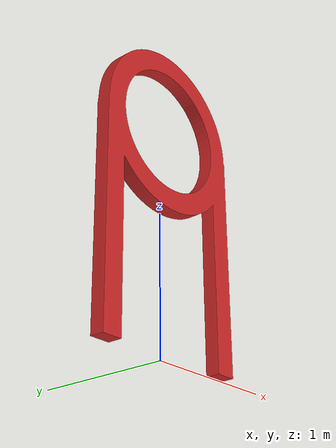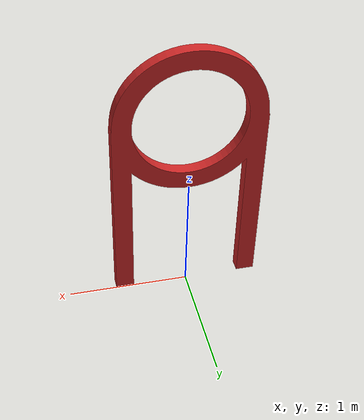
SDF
<?xml version="1.0"?>
<sdf version="1.6">
  <static>true</static>
  <model name="circle_window_90cm">
    <link name="link">
      <collision name='collision'>
        <pose frame=''>0 0 0 0 0 0</pose>
        <geometry>
          <mesh>
            <uri>model://circle_window_90cm/meshes/circle_window_90cm.stl</uri>
          </mesh>
        </geometry>
      </collision>
      <!-- 显示设置 -->
      <visual name="visual">
        <geometry>
          <mesh>
            <scale>1 1 1</scale>
            <uri>model://circle_window_90cm/meshes/circle_window_90cm.stl</uri>
          </mesh>
        </geometry>
        <material>
          <script>
            <name>Gazebo/Red</name>
            <uri>file://media/materials/scripts/gazebo.material</uri>
          </script>
        </material>
      </visual>
    </link>
  </model>
</sdf>
